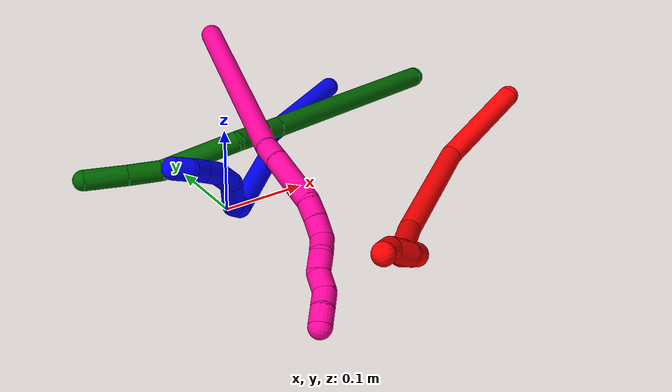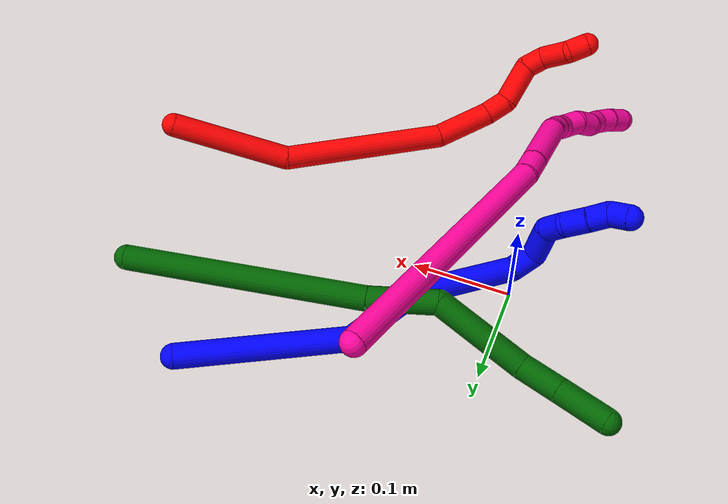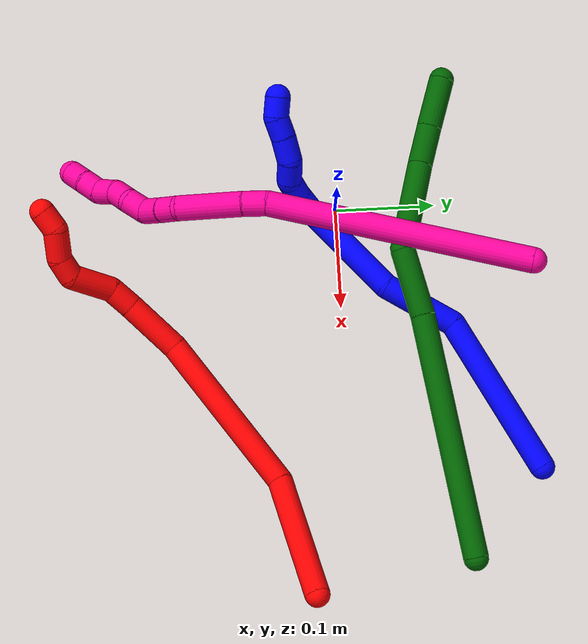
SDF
<sdf version="1.7">
 <world name="default">
  <model name="1">
   <static>0</static>
   <link name="1">
    <collision name="collision-cylinder-e_1_1_4">
     <pose>-0.035266 -0.025916 -0.07158 2.79422 -0.433823 -1.79682</pose>
     <geometry><cylinder><radius>0.0125</radius><length>0.167797</length></cylinder></geometry>
     <surface>
      <friction><ode><mu>1.16</mu><mu2>1.16</mu2><slip1>0</slip1><slip2>0</slip2></ode></friction>
      <contact><ode><kp>1e+06</kp><kd>1</kd><max_vel>0</max_vel><min_depth>0.001</min_depth></ode></contact>
     </surface>
    </collision>
    <visual name="visual-cylinder-e_1_1_4">
     <pose>-0.035266 -0.025916 -0.07158 2.79422 -0.433823 -1.79682</pose>
     <geometry><cylinder><radius>0.0125</radius><length>0.167797</length></cylinder></geometry>
     <material><ambient>0 0 1 1</ambient></material>
    </visual>
    <collision name="collision-cylinder-e_2_4_5">
     <pose>-0.072046 -0.077847 -0.17126 2.39471 -0.039508 -0.100757</pose>
     <geometry><cylinder><radius>0.0125</radius><length>0.076648</length></cylinder></geometry>
     <surface>
      <friction><ode><mu>1.16</mu><mu2>1.16</mu2><slip1>0</slip1><slip2>0</slip2></ode></friction>
      <contact><ode><kp>1e+06</kp><kd>1</kd><max_vel>0</max_vel><min_depth>0.001</min_depth></ode></contact>
     </surface>
    </collision>
    <visual name="visual-cylinder-e_2_4_5">
     <pose>-0.072046 -0.077847 -0.17126 2.39471 -0.039508 -0.100757</pose>
     <geometry><cylinder><radius>0.0125</radius><length>0.076648</length></cylinder></geometry>
     <material><ambient>0 0 1 1</ambient></material>
    </visual>
    <collision name="collision-cylinder-e_3_5_6">
     <pose>-0.084686 -0.124403 -0.246896 2.73371 -0.211635 -0.948889</pose>
     <geometry><cylinder><radius>0.0125</radius><length>0.105931</length></cylinder></geometry>
     <surface>
      <friction><ode><mu>1.16</mu><mu2>1.16</mu2><slip1>0</slip1><slip2>0</slip2></ode></friction>
      <contact><ode><kp>1e+06</kp><kd>1</kd><max_vel>0</max_vel><min_depth>0.001</min_depth></ode></contact>
     </surface>
    </collision>
    <visual name="visual-cylinder-e_3_5_6">
     <pose>-0.084686 -0.124403 -0.246896 2.73371 -0.211635 -0.948889</pose>
     <geometry><cylinder><radius>0.0125</radius><length>0.105931</length></cylinder></geometry>
     <material><ambient>0 0 1 1</ambient></material>
    </visual>
    <collision name="collision-cylinder-e_4_6_7">
     <pose>-0.102156 -0.155065 -0.300204 2.08906 -0.4986 -0.826111</pose>
     <geometry><cylinder><radius>0.0125</radius><length>0.026534</length></cylinder></geometry>
     <surface>
      <friction><ode><mu>1.16</mu><mu2>1.16</mu2><slip1>0</slip1><slip2>0</slip2></ode></friction>
      <contact><ode><kp>1e+06</kp><kd>1</kd><max_vel>0</max_vel><min_depth>0.001</min_depth></ode></contact>
     </surface>
    </collision>
    <visual name="visual-cylinder-e_4_6_7">
     <pose>-0.102156 -0.155065 -0.300204 2.08906 -0.4986 -0.826111</pose>
     <geometry><cylinder><radius>0.0125</radius><length>0.026534</length></cylinder></geometry>
     <material><ambient>0 0 1 1</ambient></material>
    </visual>
    <collision name="collision-cylinder-e_5_7_8">
     <pose>-0.117259 -0.179723 -0.301734 1.28689 -0.524422 -0.397232</pose>
     <geometry><cylinder><radius>0.0125</radius><length>0.034985</length></cylinder></geometry>
     <surface>
      <friction><ode><mu>1.16</mu><mu2>1.16</mu2><slip1>0</slip1><slip2>0</slip2></ode></friction>
      <contact><ode><kp>1e+06</kp><kd>1</kd><max_vel>0</max_vel><min_depth>0.001</min_depth></ode></contact>
     </surface>
    </collision>
    <visual name="visual-cylinder-e_5_7_8">
     <pose>-0.117259 -0.179723 -0.301734 1.28689 -0.524422 -0.397232</pose>
     <geometry><cylinder><radius>0.0125</radius><length>0.034985</length></cylinder></geometry>
     <material><ambient>0 0 1 1</ambient></material>
    </visual>
    <collision name="collision-cylinder-e_6_8_9">
     <pose>-0.13614 -0.199336 -0.298403 1.74811 -1.09952 -1.26421</pose>
     <geometry><cylinder><radius>0.0125</radius><length>0.02272</length></cylinder></geometry>
     <surface>
      <friction><ode><mu>1.16</mu><mu2>1.16</mu2><slip1>0</slip1><slip2>0</slip2></ode></friction>
      <contact><ode><kp>1e+06</kp><kd>1</kd><max_vel>0</max_vel><min_depth>0.001</min_depth></ode></contact>
     </surface>
    </collision>
    <visual name="visual-cylinder-e_6_8_9">
     <pose>-0.13614 -0.199336 -0.298403 1.74811 -1.09952 -1.26421</pose>
     <geometry><cylinder><radius>0.0125</radius><length>0.02272</length></cylinder></geometry>
     <material><ambient>0 0 1 1</ambient></material>
    </visual>
    <collision name="collision-cylinder-e_7_9_10">
     <pose>-0.155674 -0.210135 -0.304861 2.3408 -0.868168 -1.66165</pose>
     <geometry><cylinder><radius>0.0125</radius><length>0.024669</length></cylinder></geometry>
     <surface>
      <friction><ode><mu>1.16</mu><mu2>1.16</mu2><slip1>0</slip1><slip2>0</slip2></ode></friction>
      <contact><ode><kp>1e+06</kp><kd>1</kd><max_vel>0</max_vel><min_depth>0.001</min_depth></ode></contact>
     </surface>
    </collision>
    <visual name="visual-cylinder-e_7_9_10">
     <pose>-0.155674 -0.210135 -0.304861 2.3408 -0.868168 -1.66165</pose>
     <geometry><cylinder><radius>0.0125</radius><length>0.024669</length></cylinder></geometry>
     <material><ambient>0 0 1 1</ambient></material>
    </visual>
    <collision name="collision-cylinder-e_8_10_11">
     <pose>-0.172343 -0.221066 -0.315635 2.35766 -0.777085 -1.56107</pose>
     <geometry><cylinder><radius>0.0125</radius><length>0.020695</length></cylinder></geometry>
     <surface>
      <friction><ode><mu>1.16</mu><mu2>1.16</mu2><slip1>0</slip1><slip2>0</slip2></ode></friction>
      <contact><ode><kp>1e+06</kp><kd>1</kd><max_vel>0</max_vel><min_depth>0.001</min_depth></ode></contact>
     </surface>
    </collision>
    <visual name="visual-cylinder-e_8_10_11">
     <pose>-0.172343 -0.221066 -0.315635 2.35766 -0.777085 -1.56107</pose>
     <geometry><cylinder><radius>0.0125</radius><length>0.020695</length></cylinder></geometry>
     <material><ambient>0 0 1 1</ambient></material>
    </visual>
    <collision name="collision-cylinder-e_9_11_2">
     <pose>-0.188628 -0.227249 -0.325069 2.9142 -1.1244 -2.783</pose>
     <geometry><cylinder><radius>0.0125</radius><length>0.02002</length></cylinder></geometry>
     <surface>
      <friction><ode><mu>1.16</mu><mu2>1.16</mu2><slip1>0</slip1><slip2>0</slip2></ode></friction>
      <contact><ode><kp>1e+06</kp><kd>1</kd><max_vel>0</max_vel><min_depth>0.001</min_depth></ode></contact>
     </surface>
    </collision>
    <visual name="visual-cylinder-e_9_11_2">
     <pose>-0.188628 -0.227249 -0.325069 2.9142 -1.1244 -2.783</pose>
     <geometry><cylinder><radius>0.0125</radius><length>0.02002</length></cylinder></geometry>
     <material><ambient>0 0 1 1</ambient></material>
    </visual>
    <collision name="collision-sphere-2">
     <pose>-0.197657 -0.228224 -0.329279 0 -0 0</pose>
     <geometry><sphere><radius>0.0125</radius></sphere></geometry>
     <surface>
      <friction><ode><mu>1.16</mu><mu2>1.16</mu2><slip1>0</slip1><slip2>0</slip2></ode></friction>
      <contact><ode><kp>1e+06</kp><kd>1</kd><max_vel>0</max_vel><min_depth>0.001</min_depth></ode></contact>
     </surface>
    </collision>
    <visual name="visual-sphere-2">
     <pose>-0.197657 -0.228224 -0.329279 0 -0 0</pose>
     <geometry><sphere><radius>0.0125</radius></sphere></geometry>
     <material><ambient>0 0 1 1</ambient></material>
    </visual>
    <collision name="collision-sphere-11">
     <pose>-0.179599 -0.226275 -0.320859 0 -0 0</pose>
     <geometry><sphere><radius>0.0125</radius></sphere></geometry>
     <surface>
      <friction><ode><mu>1.16</mu><mu2>1.16</mu2><slip1>0</slip1><slip2>0</slip2></ode></friction>
      <contact><ode><kp>1e+06</kp><kd>1</kd><max_vel>0</max_vel><min_depth>0.001</min_depth></ode></contact>
     </surface>
    </collision>
    <visual name="visual-sphere-11">
     <pose>-0.179599 -0.226275 -0.320859 0 -0 0</pose>
     <geometry><sphere><radius>0.0125</radius></sphere></geometry>
     <material><ambient>0 0 1 1</ambient></material>
    </visual>
    <collision name="collision-sphere-10">
     <pose>-0.165087 -0.215857 -0.31041 0 -0 0</pose>
     <geometry><sphere><radius>0.0125</radius></sphere></geometry>
     <surface>
      <friction><ode><mu>1.16</mu><mu2>1.16</mu2><slip1>0</slip1><slip2>0</slip2></ode></friction>
      <contact><ode><kp>1e+06</kp><kd>1</kd><max_vel>0</max_vel><min_depth>0.001</min_depth></ode></contact>
     </surface>
    </collision>
    <visual name="visual-sphere-10">
     <pose>-0.165087 -0.215857 -0.31041 0 -0 0</pose>
     <geometry><sphere><radius>0.0125</radius></sphere></geometry>
     <material><ambient>0 0 1 1</ambient></material>
    </visual>
    <collision name="collision-sphere-9">
     <pose>-0.146261 -0.204412 -0.299312 0 -0 0</pose>
     <geometry><sphere><radius>0.0125</radius></sphere></geometry>
     <surface>
      <friction><ode><mu>1.16</mu><mu2>1.16</mu2><slip1>0</slip1><slip2>0</slip2></ode></friction>
      <contact><ode><kp>1e+06</kp><kd>1</kd><max_vel>0</max_vel><min_depth>0.001</min_depth></ode></contact>
     </surface>
    </collision>
    <visual name="visual-sphere-9">
     <pose>-0.146261 -0.204412 -0.299312 0 -0 0</pose>
     <geometry><sphere><radius>0.0125</radius></sphere></geometry>
     <material><ambient>0 0 1 1</ambient></material>
    </visual>
    <collision name="collision-sphere-4">
     <pose>-0.070532 -0.051831 -0.143159 0 -0 0</pose>
     <geometry><sphere><radius>0.0125</radius></sphere></geometry>
     <surface>
      <friction><ode><mu>1.16</mu><mu2>1.16</mu2><slip1>0</slip1><slip2>0</slip2></ode></friction>
      <contact><ode><kp>1e+06</kp><kd>1</kd><max_vel>0</max_vel><min_depth>0.001</min_depth></ode></contact>
     </surface>
    </collision>
    <visual name="visual-sphere-4">
     <pose>-0.070532 -0.051831 -0.143159 0 -0 0</pose>
     <geometry><sphere><radius>0.0125</radius></sphere></geometry>
     <material><ambient>0 0 1 1</ambient></material>
    </visual>
    <collision name="collision-sphere-1">
     <geometry><sphere><radius>0.0125</radius></sphere></geometry>
     <surface>
      <friction><ode><mu>1.16</mu><mu2>1.16</mu2><slip1>0</slip1><slip2>0</slip2></ode></friction>
      <contact><ode><kp>1e+06</kp><kd>1</kd><max_vel>0</max_vel><min_depth>0.001</min_depth></ode></contact>
     </surface>
    </collision>
    <visual name="visual-sphere-1">
     <geometry><sphere><radius>0.0125</radius></sphere></geometry>
     <material><ambient>0 0 1 1</ambient></material>
    </visual>
    <collision name="collision-sphere-8">
     <pose>-0.126018 -0.194259 -0.297493 0 -0 0</pose>
     <geometry><sphere><radius>0.0125</radius></sphere></geometry>
     <surface>
      <friction><ode><mu>1.16</mu><mu2>1.16</mu2><slip1>0</slip1><slip2>0</slip2></ode></friction>
      <contact><ode><kp>1e+06</kp><kd>1</kd><max_vel>0</max_vel><min_depth>0.001</min_depth></ode></contact>
     </surface>
    </collision>
    <visual name="visual-sphere-8">
     <pose>-0.126018 -0.194259 -0.297493 0 -0 0</pose>
     <geometry><sphere><radius>0.0125</radius></sphere></geometry>
     <material><ambient>0 0 1 1</ambient></material>
    </visual>
    <collision name="collision-sphere-5">
     <pose>-0.07356 -0.103862 -0.19936 0 -0 0</pose>
     <geometry><sphere><radius>0.0125</radius></sphere></geometry>
     <surface>
      <friction><ode><mu>1.16</mu><mu2>1.16</mu2><slip1>0</slip1><slip2>0</slip2></ode></friction>
      <contact><ode><kp>1e+06</kp><kd>1</kd><max_vel>0</max_vel><min_depth>0.001</min_depth></ode></contact>
     </surface>
    </collision>
    <visual name="visual-sphere-5">
     <pose>-0.07356 -0.103862 -0.19936 0 -0 0</pose>
     <geometry><sphere><radius>0.0125</radius></sphere></geometry>
     <material><ambient>0 0 1 1</ambient></material>
    </visual>
    <collision name="collision-sphere-6">
     <pose>-0.095812 -0.144944 -0.294431 0 -0 0</pose>
     <geometry><sphere><radius>0.0125</radius></sphere></geometry>
     <surface>
      <friction><ode><mu>1.16</mu><mu2>1.16</mu2><slip1>0</slip1><slip2>0</slip2></ode></friction>
      <contact><ode><kp>1e+06</kp><kd>1</kd><max_vel>0</max_vel><min_depth>0.001</min_depth></ode></contact>
     </surface>
    </collision>
    <visual name="visual-sphere-6">
     <pose>-0.095812 -0.144944 -0.294431 0 -0 0</pose>
     <geometry><sphere><radius>0.0125</radius></sphere></geometry>
     <material><ambient>0 0 1 1</ambient></material>
    </visual>
    <collision name="collision-sphere-7">
     <pose>-0.1085 -0.165187 -0.305976 0 -0 0</pose>
     <geometry><sphere><radius>0.0125</radius></sphere></geometry>
     <surface>
      <friction><ode><mu>1.16</mu><mu2>1.16</mu2><slip1>0</slip1><slip2>0</slip2></ode></friction>
      <contact><ode><kp>1e+06</kp><kd>1</kd><max_vel>0</max_vel><min_depth>0.001</min_depth></ode></contact>
     </surface>
    </collision>
    <visual name="visual-sphere-7">
     <pose>-0.1085 -0.165187 -0.305976 0 -0 0</pose>
     <geometry><sphere><radius>0.0125</radius></sphere></geometry>
     <material><ambient>0 0 1 1</ambient></material>
    </visual>
    <inertial>
     <pose>-0.083 -0.105466 -0.194308 0 -0 0</pose>
     <mass>0.5</mass>
     <inertia>
      <ixx>-0.00044</ixx>
      <ixy>0</ixy>
      <ixz>0</ixz>
      <iyy>-0.000395</iyy>
      <iyz>0</iyz>
      <izz>0.000375</izz>
     </inertia>
    </inertial>
   </link>
   <pose>0.272773 0.188563 0.014148 -0.938547 0.522802 -0.572443</pose>
  </model>
  <model name="2">
   <static>0</static>
   <link name="2">
    <collision name="collision-cylinder-e_1_1_4">
     <pose>-0.055635 -0.022321 0.016636 0.93031 -1.10685 -0.601352</pose>
     <geometry><cylinder><radius>0.0125</radius><length>0.124423</length></cylinder></geometry>
     <surface>
      <friction><ode><mu>1.16</mu><mu2>1.16</mu2><slip1>0</slip1><slip2>0</slip2></ode></friction>
      <contact><ode><kp>1e+06</kp><kd>1</kd><max_vel>0</max_vel><min_depth>0.001</min_depth></ode></contact>
     </surface>
    </collision>
    <visual name="visual-cylinder-e_1_1_4">
     <pose>-0.055635 -0.022321 0.016636 0.93031 -1.10685 -0.601352</pose>
     <geometry><cylinder><radius>0.0125</radius><length>0.124423</length></cylinder></geometry>
     <material><ambient>1 0 0 1</ambient></material>
    </visual>
    <collision name="collision-cylinder-e_2_4_5">
     <pose>-0.194416 -0.03968 0.05244 -0.253343 -1.33701 0.200499</pose>
     <geometry><cylinder><radius>0.0125</radius><length>0.170942</length></cylinder></geometry>
     <surface>
      <friction><ode><mu>1.16</mu><mu2>1.16</mu2><slip1>0</slip1><slip2>0</slip2></ode></friction>
      <contact><ode><kp>1e+06</kp><kd>1</kd><max_vel>0</max_vel><min_depth>0.001</min_depth></ode></contact>
     </surface>
    </collision>
    <visual name="visual-cylinder-e_2_4_5">
     <pose>-0.194416 -0.03968 0.05244 -0.253343 -1.33701 0.200499</pose>
     <geometry><cylinder><radius>0.0125</radius><length>0.170942</length></cylinder></geometry>
     <material><ambient>1 0 0 1</ambient></material>
    </visual>
    <collision name="collision-cylinder-e_3_5_6">
     <pose>-0.30581 -0.025194 0.07443 -1.28278 -1.23272 0.973133</pose>
     <geometry><cylinder><radius>0.0125</radius><length>0.059887</length></cylinder></geometry>
     <surface>
      <friction><ode><mu>1.16</mu><mu2>1.16</mu2><slip1>0</slip1><slip2>0</slip2></ode></friction>
      <contact><ode><kp>1e+06</kp><kd>1</kd><max_vel>0</max_vel><min_depth>0.001</min_depth></ode></contact>
     </surface>
    </collision>
    <visual name="visual-cylinder-e_3_5_6">
     <pose>-0.30581 -0.025194 0.07443 -1.28278 -1.23272 0.973133</pose>
     <geometry><cylinder><radius>0.0125</radius><length>0.059887</length></cylinder></geometry>
     <material><ambient>1 0 0 1</ambient></material>
    </visual>
    <collision name="collision-cylinder-e_4_6_7">
     <pose>-0.345843 -0.010176 0.076973 -1.62137 -1.13391 1.18023</pose>
     <geometry><cylinder><radius>0.0125</radius><length>0.02601</length></cylinder></geometry>
     <surface>
      <friction><ode><mu>1.16</mu><mu2>1.16</mu2><slip1>0</slip1><slip2>0</slip2></ode></friction>
      <contact><ode><kp>1e+06</kp><kd>1</kd><max_vel>0</max_vel><min_depth>0.001</min_depth></ode></contact>
     </surface>
    </collision>
    <visual name="visual-cylinder-e_4_6_7">
     <pose>-0.345843 -0.010176 0.076973 -1.62137 -1.13391 1.18023</pose>
     <geometry><cylinder><radius>0.0125</radius><length>0.02601</length></cylinder></geometry>
     <material><ambient>1 0 0 1</ambient></material>
    </visual>
    <collision name="collision-cylinder-e_5_7_8">
     <pose>-0.37137 0.01285 0.074939 -1.67061 -0.66249 0.726431</pose>
     <geometry><cylinder><radius>0.0125</radius><length>0.04469</length></cylinder></geometry>
     <surface>
      <friction><ode><mu>1.16</mu><mu2>1.16</mu2><slip1>0</slip1><slip2>0</slip2></ode></friction>
      <contact><ode><kp>1e+06</kp><kd>1</kd><max_vel>0</max_vel><min_depth>0.001</min_depth></ode></contact>
     </surface>
    </collision>
    <visual name="visual-cylinder-e_5_7_8">
     <pose>-0.37137 0.01285 0.074939 -1.67061 -0.66249 0.726431</pose>
     <geometry><cylinder><radius>0.0125</radius><length>0.04469</length></cylinder></geometry>
     <material><ambient>1 0 0 1</ambient></material>
    </visual>
    <collision name="collision-cylinder-e_6_8_9">
     <pose>-0.39512 0.033285 0.069878 -2.42054 -1.15646 2.09394</pose>
     <geometry><cylinder><radius>0.0125</radius><length>0.021861</length></cylinder></geometry>
     <surface>
      <friction><ode><mu>1.16</mu><mu2>1.16</mu2><slip1>0</slip1><slip2>0</slip2></ode></friction>
      <contact><ode><kp>1e+06</kp><kd>1</kd><max_vel>0</max_vel><min_depth>0.001</min_depth></ode></contact>
     </surface>
    </collision>
    <visual name="visual-cylinder-e_6_8_9">
     <pose>-0.39512 0.033285 0.069878 -2.42054 -1.15646 2.09394</pose>
     <geometry><cylinder><radius>0.0125</radius><length>0.021861</length></cylinder></geometry>
     <material><ambient>1 0 0 1</ambient></material>
    </visual>
    <collision name="collision-cylinder-e_7_9_10">
     <pose>-0.417769 0.035094 0.058238 3.01088 -0.984006 -2.89856</pose>
     <geometry><cylinder><radius>0.0125</radius><length>0.030367</length></cylinder></geometry>
     <surface>
      <friction><ode><mu>1.16</mu><mu2>1.16</mu2><slip1>0</slip1><slip2>0</slip2></ode></friction>
      <contact><ode><kp>1e+06</kp><kd>1</kd><max_vel>0</max_vel><min_depth>0.001</min_depth></ode></contact>
     </surface>
    </collision>
    <visual name="visual-cylinder-e_7_9_10">
     <pose>-0.417769 0.035094 0.058238 3.01088 -0.984006 -2.89856</pose>
     <geometry><cylinder><radius>0.0125</radius><length>0.030367</length></cylinder></geometry>
     <material><ambient>1 0 0 1</ambient></material>
    </visual>
    <collision name="collision-cylinder-e_8_10_2">
     <pose>-0.441021 0.036352 0.048924 -1.96486 -1.33502 1.73673</pose>
     <geometry><cylinder><radius>0.0125</radius><length>0.02182</length></cylinder></geometry>
     <surface>
      <friction><ode><mu>1.16</mu><mu2>1.16</mu2><slip1>0</slip1><slip2>0</slip2></ode></friction>
      <contact><ode><kp>1e+06</kp><kd>1</kd><max_vel>0</max_vel><min_depth>0.001</min_depth></ode></contact>
     </surface>
    </collision>
    <visual name="visual-cylinder-e_8_10_2">
     <pose>-0.441021 0.036352 0.048924 -1.96486 -1.33502 1.73673</pose>
     <geometry><cylinder><radius>0.0125</radius><length>0.02182</length></cylinder></geometry>
     <material><ambient>1 0 0 1</ambient></material>
    </visual>
    <collision name="collision-sphere-2">
     <pose>-0.451629 0.038705 0.047946 0 -0 0</pose>
     <geometry><sphere><radius>0.0125</radius></sphere></geometry>
     <surface>
      <friction><ode><mu>1.16</mu><mu2>1.16</mu2><slip1>0</slip1><slip2>0</slip2></ode></friction>
      <contact><ode><kp>1e+06</kp><kd>1</kd><max_vel>0</max_vel><min_depth>0.001</min_depth></ode></contact>
     </surface>
    </collision>
    <visual name="visual-sphere-2">
     <pose>-0.451629 0.038705 0.047946 0 -0 0</pose>
     <geometry><sphere><radius>0.0125</radius></sphere></geometry>
     <material><ambient>1 0 0 1</ambient></material>
    </visual>
    <collision name="collision-sphere-10">
     <pose>-0.430413 0.033999 0.049903 0 -0 0</pose>
     <geometry><sphere><radius>0.0125</radius></sphere></geometry>
     <surface>
      <friction><ode><mu>1.16</mu><mu2>1.16</mu2><slip1>0</slip1><slip2>0</slip2></ode></friction>
      <contact><ode><kp>1e+06</kp><kd>1</kd><max_vel>0</max_vel><min_depth>0.001</min_depth></ode></contact>
     </surface>
    </collision>
    <visual name="visual-sphere-10">
     <pose>-0.430413 0.033999 0.049903 0 -0 0</pose>
     <geometry><sphere><radius>0.0125</radius></sphere></geometry>
     <material><ambient>1 0 0 1</ambient></material>
    </visual>
    <collision name="collision-sphere-9">
     <pose>-0.405125 0.03619 0.066573 0 -0 0</pose>
     <geometry><sphere><radius>0.0125</radius></sphere></geometry>
     <surface>
      <friction><ode><mu>1.16</mu><mu2>1.16</mu2><slip1>0</slip1><slip2>0</slip2></ode></friction>
      <contact><ode><kp>1e+06</kp><kd>1</kd><max_vel>0</max_vel><min_depth>0.001</min_depth></ode></contact>
     </surface>
    </collision>
    <visual name="visual-sphere-9">
     <pose>-0.405125 0.03619 0.066573 0 -0 0</pose>
     <geometry><sphere><radius>0.0125</radius></sphere></geometry>
     <material><ambient>1 0 0 1</ambient></material>
    </visual>
    <collision name="collision-sphere-4">
     <pose>-0.11127 -0.044642 0.033272 0 -0 0</pose>
     <geometry><sphere><radius>0.0125</radius></sphere></geometry>
     <surface>
      <friction><ode><mu>1.16</mu><mu2>1.16</mu2><slip1>0</slip1><slip2>0</slip2></ode></friction>
      <contact><ode><kp>1e+06</kp><kd>1</kd><max_vel>0</max_vel><min_depth>0.001</min_depth></ode></contact>
     </surface>
    </collision>
    <visual name="visual-sphere-4">
     <pose>-0.11127 -0.044642 0.033272 0 -0 0</pose>
     <geometry><sphere><radius>0.0125</radius></sphere></geometry>
     <material><ambient>1 0 0 1</ambient></material>
    </visual>
    <collision name="collision-sphere-1">
     <geometry><sphere><radius>0.0125</radius></sphere></geometry>
     <surface>
      <friction><ode><mu>1.16</mu><mu2>1.16</mu2><slip1>0</slip1><slip2>0</slip2></ode></friction>
      <contact><ode><kp>1e+06</kp><kd>1</kd><max_vel>0</max_vel><min_depth>0.001</min_depth></ode></contact>
     </surface>
    </collision>
    <visual name="visual-sphere-1">
     <geometry><sphere><radius>0.0125</radius></sphere></geometry>
     <material><ambient>1 0 0 1</ambient></material>
    </visual>
    <collision name="collision-sphere-8">
     <pose>-0.385114 0.03038 0.073184 0 -0 0</pose>
     <geometry><sphere><radius>0.0125</radius></sphere></geometry>
     <surface>
      <friction><ode><mu>1.16</mu><mu2>1.16</mu2><slip1>0</slip1><slip2>0</slip2></ode></friction>
      <contact><ode><kp>1e+06</kp><kd>1</kd><max_vel>0</max_vel><min_depth>0.001</min_depth></ode></contact>
     </surface>
    </collision>
    <visual name="visual-sphere-8">
     <pose>-0.385114 0.03038 0.073184 0 -0 0</pose>
     <geometry><sphere><radius>0.0125</radius></sphere></geometry>
     <material><ambient>1 0 0 1</ambient></material>
    </visual>
    <collision name="collision-sphere-5">
     <pose>-0.277562 -0.034717 0.071609 0 -0 0</pose>
     <geometry><sphere><radius>0.0125</radius></sphere></geometry>
     <surface>
      <friction><ode><mu>1.16</mu><mu2>1.16</mu2><slip1>0</slip1><slip2>0</slip2></ode></friction>
      <contact><ode><kp>1e+06</kp><kd>1</kd><max_vel>0</max_vel><min_depth>0.001</min_depth></ode></contact>
     </surface>
    </collision>
    <visual name="visual-sphere-5">
     <pose>-0.277562 -0.034717 0.071609 0 -0 0</pose>
     <geometry><sphere><radius>0.0125</radius></sphere></geometry>
     <material><ambient>1 0 0 1</ambient></material>
    </visual>
    <collision name="collision-sphere-6">
     <pose>-0.334059 -0.015672 0.077251 0 -0 0</pose>
     <geometry><sphere><radius>0.0125</radius></sphere></geometry>
     <surface>
      <friction><ode><mu>1.16</mu><mu2>1.16</mu2><slip1>0</slip1><slip2>0</slip2></ode></friction>
      <contact><ode><kp>1e+06</kp><kd>1</kd><max_vel>0</max_vel><min_depth>0.001</min_depth></ode></contact>
     </surface>
    </collision>
    <visual name="visual-sphere-6">
     <pose>-0.334059 -0.015672 0.077251 0 -0 0</pose>
     <geometry><sphere><radius>0.0125</radius></sphere></geometry>
     <material><ambient>1 0 0 1</ambient></material>
    </visual>
    <collision name="collision-sphere-7">
     <pose>-0.357626 -0.00468 0.076695 0 -0 0</pose>
     <geometry><sphere><radius>0.0125</radius></sphere></geometry>
     <surface>
      <friction><ode><mu>1.16</mu><mu2>1.16</mu2><slip1>0</slip1><slip2>0</slip2></ode></friction>
      <contact><ode><kp>1e+06</kp><kd>1</kd><max_vel>0</max_vel><min_depth>0.001</min_depth></ode></contact>
     </surface>
    </collision>
    <visual name="visual-sphere-7">
     <pose>-0.357626 -0.00468 0.076695 0 -0 0</pose>
     <geometry><sphere><radius>0.0125</radius></sphere></geometry>
     <material><ambient>1 0 0 1</ambient></material>
    </visual>
    <inertial>
     <pose>-0.230019 -0.016346 0.050413 0 -0 0</pose>
     <mass>0.5</mass>
     <inertia>
      <ixx>0.000119</ixx>
      <ixy>0</ixy>
      <ixz>0</ixz>
      <iyy>0.000593</iyy>
      <iyz>0</iyz>
      <izz>0.000616</izz>
     </inertia>
    </inertial>
   </link>
   <pose>0.387628 -0.040756 0.059271 2.6316 0.112532 0.446571</pose>
  </model>
  <model name="6">
   <static>0</static>
   <link name="6">
    <collision name="collision-cylinder-e_1_1_4">
     <pose>0.002142 -0.000476 -0.121519 3.13768 0.017623 2.70436</pose>
     <geometry><cylinder><radius>0.0125</radius><length>0.243078</length></cylinder></geometry>
     <surface>
      <friction><ode><mu>1.16</mu><mu2>1.16</mu2><slip1>0</slip1><slip2>0</slip2></ode></friction>
      <contact><ode><kp>1e+06</kp><kd>1</kd><max_vel>0</max_vel><min_depth>0.001</min_depth></ode></contact>
     </surface>
    </collision>
    <visual name="visual-cylinder-e_1_1_4">
     <pose>0.002142 -0.000476 -0.121519 3.13768 0.017623 2.70436</pose>
     <geometry><cylinder><radius>0.0125</radius><length>0.243078</length></cylinder></geometry>
     <material><ambient>0 0.392157 0.003922 1</ambient></material>
    </visual>
    <collision name="collision-cylinder-e_2_4_5">
     <pose>0.008653 -0.002205 -0.277126 3.10485 0.127391 2.58064</pose>
     <geometry><cylinder><radius>0.0125</radius><length>0.06878</length></cylinder></geometry>
     <surface>
      <friction><ode><mu>1.16</mu><mu2>1.16</mu2><slip1>0</slip1><slip2>0</slip2></ode></friction>
      <contact><ode><kp>1e+06</kp><kd>1</kd><max_vel>0</max_vel><min_depth>0.001</min_depth></ode></contact>
     </surface>
    </collision>
    <visual name="visual-cylinder-e_2_4_5">
     <pose>0.008653 -0.002205 -0.277126 3.10485 0.127391 2.58064</pose>
     <geometry><cylinder><radius>0.0125</radius><length>0.06878</length></cylinder></geometry>
     <material><ambient>0 0.392157 0.003922 1</ambient></material>
    </visual>
    <collision name="collision-cylinder-e_3_5_6">
     <pose>-0.008448 0.00026 -0.354038 -3.05499 -0.463229 2.77822</pose>
     <geometry><cylinder><radius>0.0125</radius><length>0.096095</length></cylinder></geometry>
     <surface>
      <friction><ode><mu>1.16</mu><mu2>1.16</mu2><slip1>0</slip1><slip2>0</slip2></ode></friction>
      <contact><ode><kp>1e+06</kp><kd>1</kd><max_vel>0</max_vel><min_depth>0.001</min_depth></ode></contact>
     </surface>
    </collision>
    <visual name="visual-cylinder-e_3_5_6">
     <pose>-0.008448 0.00026 -0.354038 -3.05499 -0.463229 2.77822</pose>
     <geometry><cylinder><radius>0.0125</radius><length>0.096095</length></cylinder></geometry>
     <material><ambient>0 0.392157 0.003922 1</ambient></material>
    </visual>
    <collision name="collision-cylinder-e_4_6_7">
     <pose>-0.037729 0.000654 -0.41536 2.96382 -0.393892 -2.30145</pose>
     <geometry><cylinder><radius>0.0125</radius><length>0.040709</length></cylinder></geometry>
     <surface>
      <friction><ode><mu>1.16</mu><mu2>1.16</mu2><slip1>0</slip1><slip2>0</slip2></ode></friction>
      <contact><ode><kp>1e+06</kp><kd>1</kd><max_vel>0</max_vel><min_depth>0.001</min_depth></ode></contact>
     </surface>
    </collision>
    <visual name="visual-cylinder-e_4_6_7">
     <pose>-0.037729 0.000654 -0.41536 2.96382 -0.393892 -2.30145</pose>
     <geometry><cylinder><radius>0.0125</radius><length>0.040709</length></cylinder></geometry>
     <material><ambient>0 0.392157 0.003922 1</ambient></material>
    </visual>
    <collision name="collision-cylinder-e_5_7_2">
     <pose>-0.055569 -0.007423 -0.457006 2.93904 -0.401381 -2.21501</pose>
     <geometry><cylinder><radius>0.0125</radius><length>0.051338</length></cylinder></geometry>
     <surface>
      <friction><ode><mu>1.16</mu><mu2>1.16</mu2><slip1>0</slip1><slip2>0</slip2></ode></friction>
      <contact><ode><kp>1e+06</kp><kd>1</kd><max_vel>0</max_vel><min_depth>0.001</min_depth></ode></contact>
     </surface>
    </collision>
    <visual name="visual-cylinder-e_5_7_2">
     <pose>-0.055569 -0.007423 -0.457006 2.93904 -0.401381 -2.21501</pose>
     <geometry><cylinder><radius>0.0125</radius><length>0.051338</length></cylinder></geometry>
     <material><ambient>0 0.392157 0.003922 1</ambient></material>
    </visual>
    <collision name="collision-sphere-2">
     <pose>-0.065598 -0.012177 -0.480152 0 -0 0</pose>
     <geometry><sphere><radius>0.0125</radius></sphere></geometry>
     <surface>
      <friction><ode><mu>1.16</mu><mu2>1.16</mu2><slip1>0</slip1><slip2>0</slip2></ode></friction>
      <contact><ode><kp>1e+06</kp><kd>1</kd><max_vel>0</max_vel><min_depth>0.001</min_depth></ode></contact>
     </surface>
    </collision>
    <visual name="visual-sphere-2">
     <pose>-0.065598 -0.012177 -0.480152 0 -0 0</pose>
     <geometry><sphere><radius>0.0125</radius></sphere></geometry>
     <material><ambient>0 0.392157 0.003922 1</ambient></material>
    </visual>
    <collision name="collision-sphere-7">
     <pose>-0.045541 -0.00267 -0.43386 0 -0 0</pose>
     <geometry><sphere><radius>0.0125</radius></sphere></geometry>
     <surface>
      <friction><ode><mu>1.16</mu><mu2>1.16</mu2><slip1>0</slip1><slip2>0</slip2></ode></friction>
      <contact><ode><kp>1e+06</kp><kd>1</kd><max_vel>0</max_vel><min_depth>0.001</min_depth></ode></contact>
     </surface>
    </collision>
    <visual name="visual-sphere-7">
     <pose>-0.045541 -0.00267 -0.43386 0 -0 0</pose>
     <geometry><sphere><radius>0.0125</radius></sphere></geometry>
     <material><ambient>0 0.392157 0.003922 1</ambient></material>
    </visual>
    <collision name="collision-sphere-6">
     <pose>-0.029917 0.003978 -0.396861 0 -0 0</pose>
     <geometry><sphere><radius>0.0125</radius></sphere></geometry>
     <surface>
      <friction><ode><mu>1.16</mu><mu2>1.16</mu2><slip1>0</slip1><slip2>0</slip2></ode></friction>
      <contact><ode><kp>1e+06</kp><kd>1</kd><max_vel>0</max_vel><min_depth>0.001</min_depth></ode></contact>
     </surface>
    </collision>
    <visual name="visual-sphere-6">
     <pose>-0.029917 0.003978 -0.396861 0 -0 0</pose>
     <geometry><sphere><radius>0.0125</radius></sphere></geometry>
     <material><ambient>0 0.392157 0.003922 1</ambient></material>
    </visual>
    <collision name="collision-sphere-5">
     <pose>0.013022 -0.003458 -0.311215 0 -0 0</pose>
     <geometry><sphere><radius>0.0125</radius></sphere></geometry>
     <surface>
      <friction><ode><mu>1.16</mu><mu2>1.16</mu2><slip1>0</slip1><slip2>0</slip2></ode></friction>
      <contact><ode><kp>1e+06</kp><kd>1</kd><max_vel>0</max_vel><min_depth>0.001</min_depth></ode></contact>
     </surface>
    </collision>
    <visual name="visual-sphere-5">
     <pose>0.013022 -0.003458 -0.311215 0 -0 0</pose>
     <geometry><sphere><radius>0.0125</radius></sphere></geometry>
     <material><ambient>0 0.392157 0.003922 1</ambient></material>
    </visual>
    <collision name="collision-sphere-1">
     <geometry><sphere><radius>0.0125</radius></sphere></geometry>
     <surface>
      <friction><ode><mu>1.16</mu><mu2>1.16</mu2><slip1>0</slip1><slip2>0</slip2></ode></friction>
      <contact><ode><kp>1e+06</kp><kd>1</kd><max_vel>0</max_vel><min_depth>0.001</min_depth></ode></contact>
     </surface>
    </collision>
    <visual name="visual-sphere-1">
     <geometry><sphere><radius>0.0125</radius></sphere></geometry>
     <material><ambient>0 0.392157 0.003922 1</ambient></material>
    </visual>
    <collision name="collision-sphere-4">
     <pose>0.004284 -0.000952 -0.243038 0 -0 0</pose>
     <geometry><sphere><radius>0.0125</radius></sphere></geometry>
     <surface>
      <friction><ode><mu>1.16</mu><mu2>1.16</mu2><slip1>0</slip1><slip2>0</slip2></ode></friction>
      <contact><ode><kp>1e+06</kp><kd>1</kd><max_vel>0</max_vel><min_depth>0.001</min_depth></ode></contact>
     </surface>
    </collision>
    <visual name="visual-sphere-4">
     <pose>0.004284 -0.000952 -0.243038 0 -0 0</pose>
     <geometry><sphere><radius>0.0125</radius></sphere></geometry>
     <material><ambient>0 0.392157 0.003922 1</ambient></material>
    </visual>
    <inertial>
     <pose>-0.00817 -0.001194 -0.245983 0 -0 0</pose>
     <mass>0.5</mass>
     <inertia>
      <ixx>-0.000663</ixx>
      <ixy>0</ixy>
      <ixz>0</ixz>
      <iyy>0.001741</iyy>
      <iyz>0</iyz>
      <izz>-1.6e-05</izz>
     </inertia>
    </inertial>
   </link>
   <pose>0.359949 0.115084 0.034944 -1.58041 -0.420814 -1.43204</pose>
  </model>
  <model name="18">
   <static>0</static>
   <link name="18">
    <collision name="collision-cylinder-e_1_1_4">
     <pose>0.019876 -0.120456 0.046831 1.2 0.152597 0.104505</pose>
     <geometry><cylinder><radius>0.0125</radius><length>0.261518</length></cylinder></geometry>
     <surface>
      <friction><ode><mu>1.16</mu><mu2>1.16</mu2><slip1>0</slip1><slip2>0</slip2></ode></friction>
      <contact><ode><kp>1e+06</kp><kd>1</kd><max_vel>0</max_vel><min_depth>0.001</min_depth></ode></contact>
     </surface>
    </collision>
    <visual name="visual-cylinder-e_1_1_4">
     <pose>0.019876 -0.120456 0.046831 1.2 0.152597 0.104505</pose>
     <geometry><cylinder><radius>0.0125</radius><length>0.261518</length></cylinder></geometry>
     <material><ambient>1 0.007843 0.615686 1</ambient></material>
    </visual>
    <collision name="collision-cylinder-e_2_4_5">
     <pose>0.038838 -0.251971 0.097964 1.19975 -0.076937 -0.052635</pose>
     <geometry><cylinder><radius>0.0125</radius><length>0.023802</length></cylinder></geometry>
     <surface>
      <friction><ode><mu>1.16</mu><mu2>1.16</mu2><slip1>0</slip1><slip2>0</slip2></ode></friction>
      <contact><ode><kp>1e+06</kp><kd>1</kd><max_vel>0</max_vel><min_depth>0.001</min_depth></ode></contact>
     </surface>
    </collision>
    <visual name="visual-cylinder-e_2_4_5">
     <pose>0.038838 -0.251971 0.097964 1.19975 -0.076937 -0.052635</pose>
     <geometry><cylinder><radius>0.0125</radius><length>0.023802</length></cylinder></geometry>
     <material><ambient>1 0.007843 0.615686 1</ambient></material>
    </visual>
    <collision name="collision-cylinder-e_3_5_6">
     <pose>0.033542 -0.293116 0.116322 1.13376 -0.131159 -0.083564</pose>
     <geometry><cylinder><radius>0.0125</radius><length>0.066992</length></cylinder></geometry>
     <surface>
      <friction><ode><mu>1.16</mu><mu2>1.16</mu2><slip1>0</slip1><slip2>0</slip2></ode></friction>
      <contact><ode><kp>1e+06</kp><kd>1</kd><max_vel>0</max_vel><min_depth>0.001</min_depth></ode></contact>
     </surface>
    </collision>
    <visual name="visual-cylinder-e_3_5_6">
     <pose>0.033542 -0.293116 0.116322 1.13376 -0.131159 -0.083564</pose>
     <geometry><cylinder><radius>0.0125</radius><length>0.066992</length></cylinder></geometry>
     <material><ambient>1 0.007843 0.615686 1</ambient></material>
    </visual>
    <collision name="collision-cylinder-e_4_6_7">
     <pose>0.027231 -0.330103 0.137447 0.773311 -0.19294 -0.078759</pose>
     <geometry><cylinder><radius>0.0125</radius><length>0.020131</length></cylinder></geometry>
     <surface>
      <friction><ode><mu>1.16</mu><mu2>1.16</mu2><slip1>0</slip1><slip2>0</slip2></ode></friction>
      <contact><ode><kp>1e+06</kp><kd>1</kd><max_vel>0</max_vel><min_depth>0.001</min_depth></ode></contact>
     </surface>
    </collision>
    <visual name="visual-cylinder-e_4_6_7">
     <pose>0.027231 -0.330103 0.137447 0.773311 -0.19294 -0.078759</pose>
     <geometry><cylinder><radius>0.0125</radius><length>0.020131</length></cylinder></geometry>
     <material><ambient>1 0.007843 0.615686 1</ambient></material>
    </visual>
    <collision name="collision-cylinder-e_5_7_8">
     <pose>0.023346 -0.344186 0.153128 0.695154 -0.172639 -0.06268</pose>
     <geometry><cylinder><radius>0.0125</radius><length>0.022767</length></cylinder></geometry>
     <surface>
      <friction><ode><mu>1.16</mu><mu2>1.16</mu2><slip1>0</slip1><slip2>0</slip2></ode></friction>
      <contact><ode><kp>1e+06</kp><kd>1</kd><max_vel>0</max_vel><min_depth>0.001</min_depth></ode></contact>
     </surface>
    </collision>
    <visual name="visual-cylinder-e_5_7_8">
     <pose>0.023346 -0.344186 0.153128 0.695154 -0.172639 -0.06268</pose>
     <geometry><cylinder><radius>0.0125</radius><length>0.022767</length></cylinder></geometry>
     <material><ambient>1 0.007843 0.615686 1</ambient></material>
    </visual>
    <collision name="collision-cylinder-e_6_8_9">
     <pose>0.025866 -0.359352 0.167408 0.953386 0.428792 0.22395</pose>
     <geometry><cylinder><radius>0.0125</radius><length>0.021529</length></cylinder></geometry>
     <surface>
      <friction><ode><mu>1.16</mu><mu2>1.16</mu2><slip1>0</slip1><slip2>0</slip2></ode></friction>
      <contact><ode><kp>1e+06</kp><kd>1</kd><max_vel>0</max_vel><min_depth>0.001</min_depth></ode></contact>
     </surface>
    </collision>
    <visual name="visual-cylinder-e_6_8_9">
     <pose>0.025866 -0.359352 0.167408 0.953386 0.428792 0.22395</pose>
     <geometry><cylinder><radius>0.0125</radius><length>0.021529</length></cylinder></geometry>
     <material><ambient>1 0.007843 0.615686 1</ambient></material>
    </visual>
    <collision name="collision-cylinder-e_7_9_10">
     <pose>0.033272 -0.372715 0.1817 0.557773 0.280677 0.080859</pose>
     <geometry><cylinder><radius>0.0125</radius><length>0.021159</length></cylinder></geometry>
     <surface>
      <friction><ode><mu>1.16</mu><mu2>1.16</mu2><slip1>0</slip1><slip2>0</slip2></ode></friction>
      <contact><ode><kp>1e+06</kp><kd>1</kd><max_vel>0</max_vel><min_depth>0.001</min_depth></ode></contact>
     </surface>
    </collision>
    <visual name="visual-cylinder-e_7_9_10">
     <pose>0.033272 -0.372715 0.1817 0.557773 0.280677 0.080859</pose>
     <geometry><cylinder><radius>0.0125</radius><length>0.021159</length></cylinder></geometry>
     <material><ambient>1 0.007843 0.615686 1</ambient></material>
    </visual>
    <collision name="collision-cylinder-e_8_10_11">
     <pose>0.035401 -0.385812 0.197769 0.803377 -0.074646 -0.031721</pose>
     <geometry><cylinder><radius>0.0125</radius><length>0.021505</length></cylinder></geometry>
     <surface>
      <friction><ode><mu>1.16</mu><mu2>1.16</mu2><slip1>0</slip1><slip2>0</slip2></ode></friction>
      <contact><ode><kp>1e+06</kp><kd>1</kd><max_vel>0</max_vel><min_depth>0.001</min_depth></ode></contact>
     </surface>
    </collision>
    <visual name="visual-cylinder-e_8_10_11">
     <pose>0.035401 -0.385812 0.197769 0.803377 -0.074646 -0.031721</pose>
     <geometry><cylinder><radius>0.0125</radius><length>0.021505</length></cylinder></geometry>
     <material><ambient>1 0.007843 0.615686 1</ambient></material>
    </visual>
    <collision name="collision-cylinder-e_9_11_12">
     <pose>0.038623 -0.400234 0.211618 0.808298 0.409448 0.177141</pose>
     <geometry><cylinder><radius>0.0125</radius><length>0.020216</length></cylinder></geometry>
     <surface>
      <friction><ode><mu>1.16</mu><mu2>1.16</mu2><slip1>0</slip1><slip2>0</slip2></ode></friction>
      <contact><ode><kp>1e+06</kp><kd>1</kd><max_vel>0</max_vel><min_depth>0.001</min_depth></ode></contact>
     </surface>
    </collision>
    <visual name="visual-cylinder-e_9_11_12">
     <pose>0.038623 -0.400234 0.211618 0.808298 0.409448 0.177141</pose>
     <geometry><cylinder><radius>0.0125</radius><length>0.020216</length></cylinder></geometry>
     <material><ambient>1 0.007843 0.615686 1</ambient></material>
    </visual>
    <collision name="collision-cylinder-e_10_12_2">
     <pose>0.046002 -0.412887 0.225588 0.66634 0.335459 0.11706</pose>
     <geometry><cylinder><radius>0.0125</radius><length>0.020382</length></cylinder></geometry>
     <surface>
      <friction><ode><mu>1.16</mu><mu2>1.16</mu2><slip1>0</slip1><slip2>0</slip2></ode></friction>
      <contact><ode><kp>1e+06</kp><kd>1</kd><max_vel>0</max_vel><min_depth>0.001</min_depth></ode></contact>
     </surface>
    </collision>
    <visual name="visual-cylinder-e_10_12_2">
     <pose>0.046002 -0.412887 0.225588 0.66634 0.335459 0.11706</pose>
     <geometry><cylinder><radius>0.0125</radius><length>0.020382</length></cylinder></geometry>
     <material><ambient>1 0.007843 0.615686 1</ambient></material>
    </visual>
    <collision name="collision-sphere-2">
     <pose>0.049357 -0.418836 0.233152 0 -0 0</pose>
     <geometry><sphere><radius>0.0125</radius></sphere></geometry>
     <surface>
      <friction><ode><mu>1.16</mu><mu2>1.16</mu2><slip1>0</slip1><slip2>0</slip2></ode></friction>
      <contact><ode><kp>1e+06</kp><kd>1</kd><max_vel>0</max_vel><min_depth>0.001</min_depth></ode></contact>
     </surface>
    </collision>
    <visual name="visual-sphere-2">
     <pose>0.049357 -0.418836 0.233152 0 -0 0</pose>
     <geometry><sphere><radius>0.0125</radius></sphere></geometry>
     <material><ambient>1 0.007843 0.615686 1</ambient></material>
    </visual>
    <collision name="collision-sphere-12">
     <pose>0.042647 -0.406939 0.218023 0 -0 0</pose>
     <geometry><sphere><radius>0.0125</radius></sphere></geometry>
     <surface>
      <friction><ode><mu>1.16</mu><mu2>1.16</mu2><slip1>0</slip1><slip2>0</slip2></ode></friction>
      <contact><ode><kp>1e+06</kp><kd>1</kd><max_vel>0</max_vel><min_depth>0.001</min_depth></ode></contact>
     </surface>
    </collision>
    <visual name="visual-sphere-12">
     <pose>0.042647 -0.406939 0.218023 0 -0 0</pose>
     <geometry><sphere><radius>0.0125</radius></sphere></geometry>
     <material><ambient>1 0.007843 0.615686 1</ambient></material>
    </visual>
    <collision name="collision-sphere-11">
     <pose>0.034599 -0.393529 0.205214 0 -0 0</pose>
     <geometry><sphere><radius>0.0125</radius></sphere></geometry>
     <surface>
      <friction><ode><mu>1.16</mu><mu2>1.16</mu2><slip1>0</slip1><slip2>0</slip2></ode></friction>
      <contact><ode><kp>1e+06</kp><kd>1</kd><max_vel>0</max_vel><min_depth>0.001</min_depth></ode></contact>
     </surface>
    </collision>
    <visual name="visual-sphere-11">
     <pose>0.034599 -0.393529 0.205214 0 -0 0</pose>
     <geometry><sphere><radius>0.0125</radius></sphere></geometry>
     <material><ambient>1 0.007843 0.615686 1</ambient></material>
    </visual>
    <collision name="collision-sphere-10">
     <pose>0.036203 -0.378095 0.190325 0 -0 0</pose>
     <geometry><sphere><radius>0.0125</radius></sphere></geometry>
     <surface>
      <friction><ode><mu>1.16</mu><mu2>1.16</mu2><slip1>0</slip1><slip2>0</slip2></ode></friction>
      <contact><ode><kp>1e+06</kp><kd>1</kd><max_vel>0</max_vel><min_depth>0.001</min_depth></ode></contact>
     </surface>
    </collision>
    <visual name="visual-sphere-10">
     <pose>0.036203 -0.378095 0.190325 0 -0 0</pose>
     <geometry><sphere><radius>0.0125</radius></sphere></geometry>
     <material><ambient>1 0.007843 0.615686 1</ambient></material>
    </visual>
    <collision name="collision-sphere-9">
     <pose>0.030342 -0.367334 0.173075 0 -0 0</pose>
     <geometry><sphere><radius>0.0125</radius></sphere></geometry>
     <surface>
      <friction><ode><mu>1.16</mu><mu2>1.16</mu2><slip1>0</slip1><slip2>0</slip2></ode></friction>
      <contact><ode><kp>1e+06</kp><kd>1</kd><max_vel>0</max_vel><min_depth>0.001</min_depth></ode></contact>
     </surface>
    </collision>
    <visual name="visual-sphere-9">
     <pose>0.030342 -0.367334 0.173075 0 -0 0</pose>
     <geometry><sphere><radius>0.0125</radius></sphere></geometry>
     <material><ambient>1 0.007843 0.615686 1</ambient></material>
    </visual>
    <collision name="collision-sphere-4">
     <pose>0.039752 -0.240913 0.093661 0 -0 0</pose>
     <geometry><sphere><radius>0.0125</radius></sphere></geometry>
     <surface>
      <friction><ode><mu>1.16</mu><mu2>1.16</mu2><slip1>0</slip1><slip2>0</slip2></ode></friction>
      <contact><ode><kp>1e+06</kp><kd>1</kd><max_vel>0</max_vel><min_depth>0.001</min_depth></ode></contact>
     </surface>
    </collision>
    <visual name="visual-sphere-4">
     <pose>0.039752 -0.240913 0.093661 0 -0 0</pose>
     <geometry><sphere><radius>0.0125</radius></sphere></geometry>
     <material><ambient>1 0.007843 0.615686 1</ambient></material>
    </visual>
    <collision name="collision-sphere-1">
     <geometry><sphere><radius>0.0125</radius></sphere></geometry>
     <surface>
      <friction><ode><mu>1.16</mu><mu2>1.16</mu2><slip1>0</slip1><slip2>0</slip2></ode></friction>
      <contact><ode><kp>1e+06</kp><kd>1</kd><max_vel>0</max_vel><min_depth>0.001</min_depth></ode></contact>
     </surface>
    </collision>
    <visual name="visual-sphere-1">
     <geometry><sphere><radius>0.0125</radius></sphere></geometry>
     <material><ambient>1 0.007843 0.615686 1</ambient></material>
    </visual>
    <collision name="collision-sphere-8">
     <pose>0.02139 -0.351369 0.16174 0 -0 0</pose>
     <geometry><sphere><radius>0.0125</radius></sphere></geometry>
     <surface>
      <friction><ode><mu>1.16</mu><mu2>1.16</mu2><slip1>0</slip1><slip2>0</slip2></ode></friction>
      <contact><ode><kp>1e+06</kp><kd>1</kd><max_vel>0</max_vel><min_depth>0.001</min_depth></ode></contact>
     </surface>
    </collision>
    <visual name="visual-sphere-8">
     <pose>0.02139 -0.351369 0.16174 0 -0 0</pose>
     <geometry><sphere><radius>0.0125</radius></sphere></geometry>
     <material><ambient>1 0.007843 0.615686 1</ambient></material>
    </visual>
    <collision name="collision-sphere-5">
     <pose>0.037923 -0.263029 0.102266 0 -0 0</pose>
     <geometry><sphere><radius>0.0125</radius></sphere></geometry>
     <surface>
      <friction><ode><mu>1.16</mu><mu2>1.16</mu2><slip1>0</slip1><slip2>0</slip2></ode></friction>
      <contact><ode><kp>1e+06</kp><kd>1</kd><max_vel>0</max_vel><min_depth>0.001</min_depth></ode></contact>
     </surface>
    </collision>
    <visual name="visual-sphere-5">
     <pose>0.037923 -0.263029 0.102266 0 -0 0</pose>
     <geometry><sphere><radius>0.0125</radius></sphere></geometry>
     <material><ambient>1 0.007843 0.615686 1</ambient></material>
    </visual>
    <collision name="collision-sphere-6">
     <pose>0.029161 -0.323203 0.130377 0 -0 0</pose>
     <geometry><sphere><radius>0.0125</radius></sphere></geometry>
     <surface>
      <friction><ode><mu>1.16</mu><mu2>1.16</mu2><slip1>0</slip1><slip2>0</slip2></ode></friction>
      <contact><ode><kp>1e+06</kp><kd>1</kd><max_vel>0</max_vel><min_depth>0.001</min_depth></ode></contact>
     </surface>
    </collision>
    <visual name="visual-sphere-6">
     <pose>0.029161 -0.323203 0.130377 0 -0 0</pose>
     <geometry><sphere><radius>0.0125</radius></sphere></geometry>
     <material><ambient>1 0.007843 0.615686 1</ambient></material>
    </visual>
    <collision name="collision-sphere-7">
     <pose>0.025301 -0.337004 0.144516 0 -0 0</pose>
     <geometry><sphere><radius>0.0125</radius></sphere></geometry>
     <surface>
      <friction><ode><mu>1.16</mu><mu2>1.16</mu2><slip1>0</slip1><slip2>0</slip2></ode></friction>
      <contact><ode><kp>1e+06</kp><kd>1</kd><max_vel>0</max_vel><min_depth>0.001</min_depth></ode></contact>
     </surface>
    </collision>
    <visual name="visual-sphere-7">
     <pose>0.025301 -0.337004 0.144516 0 -0 0</pose>
     <geometry><sphere><radius>0.0125</radius></sphere></geometry>
     <material><ambient>1 0.007843 0.615686 1</ambient></material>
    </visual>
    <inertial>
     <pose>0.026379 -0.224085 0.098405 0 -0 0</pose>
     <mass>0.5</mass>
     <inertia>
      <ixx>0.001672</ixx>
      <ixy>0</ixy>
      <ixz>0</ixz>
      <iyy>0.000704</iyy>
      <iyz>0</iyz>
      <izz>0.001209</izz>
     </inertia>
    </inertial>
   </link>
   <pose>0.089168 0.180479 0.134214 -2.95544 -0.37771 3.05595</pose>
  </model>
 </world>
</sdf>
